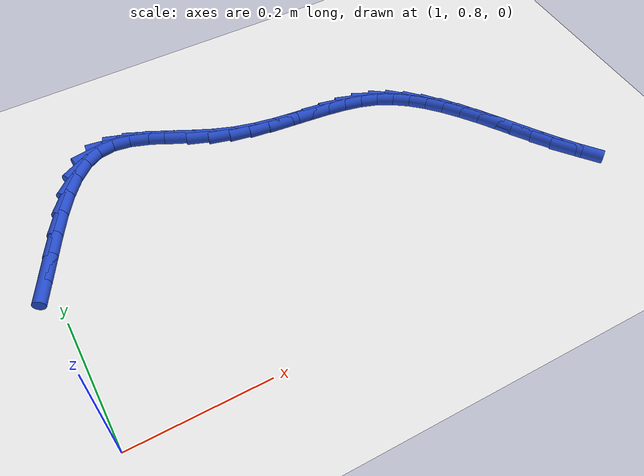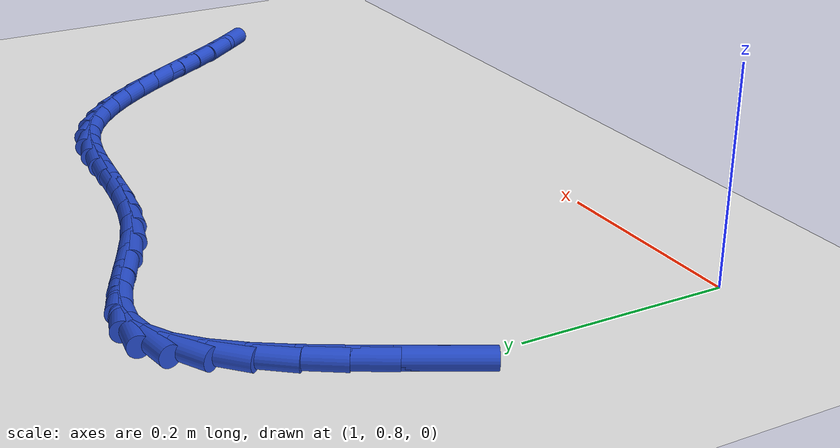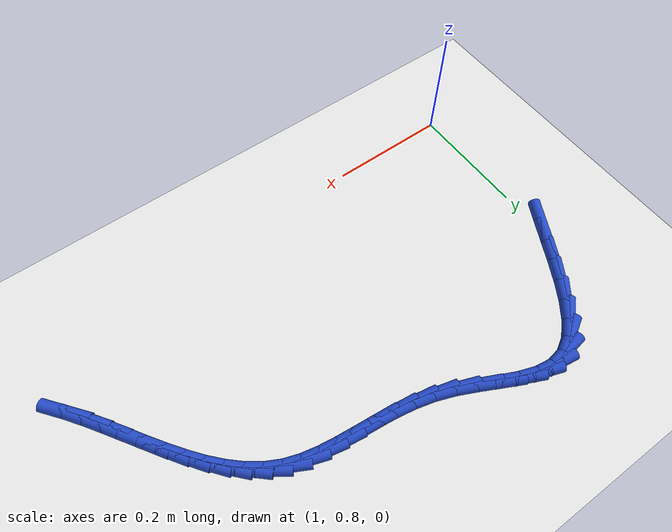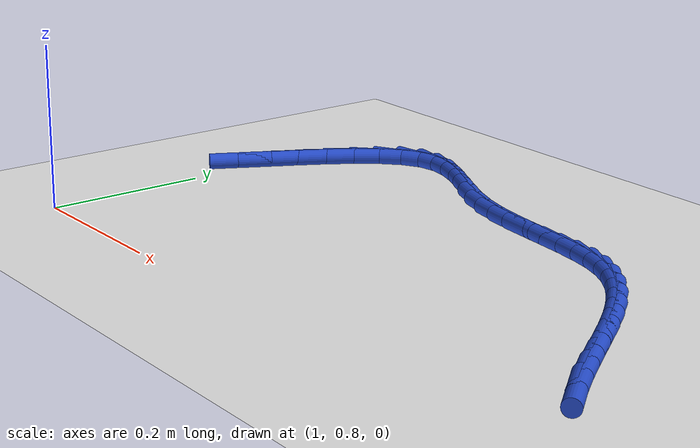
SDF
<sdf version="1.6">
 <world name="default">
  <model name="ground_plane">
   <static>1</static>
   <link name="link">
    <collision name="collision">
     <geometry><plane><normal>0 0 1</normal><size>100 100</size></plane></geometry>
     <surface><friction><ode><mu>100</mu><mu2>50</mu2></ode></friction></surface>
    </collision>
    <visual name="visual">
     <cast_shadows>0</cast_shadows>
     <geometry><plane><normal>0 0 1</normal><size>100 100</size></plane></geometry>
     <material>
      <script><uri>file://media/materials/scripts/gazebo.material</uri><name>Gazebo/WhiteGlow</name></script>
     </material>
    </visual>
   </link>
  </model>
  <model name="line">
   <link name="link_63">
    <pose>0.9939572712302231 1.073131018334222 0.01 0 1.57 1.0775166116276274</pose>
    <collision name="collision">
     <geometry><cylinder><radius>0.01</radius><length>0.08</length></cylinder></geometry>
    </collision>
    <visual name="visual">
     <material>
      <script><name>Gazebo/Blue</name><uri>file://media/materials/scripts/gazebo.material</uri></script>
     </material>
     <geometry><cylinder><radius>0.01</radius><length>0.08</length></cylinder></geometry>
    </visual>
   </link>
   <link name="link_64">
    <pose>1.0111594994914133 1.105128713908343 0.01 0 1.57 1.0798626204709945</pose>
    <collision name="collision">
     <geometry><cylinder><radius>0.01</radius><length>0.08</length></cylinder></geometry>
    </collision>
    <visual name="visual">
     <material>
      <script><name>Gazebo/Blue</name><uri>file://media/materials/scripts/gazebo.material</uri></script>
     </material>
     <geometry><cylinder><radius>0.01</radius><length>0.08</length></cylinder></geometry>
    </visual>
   </link>
   <link name="link_65">
    <pose>1.0290099567558029 1.138519763008025 0.01 0 1.57 1.0557053734130493</pose>
    <collision name="collision">
     <geometry><cylinder><radius>0.01</radius><length>0.08</length></cylinder></geometry>
    </collision>
    <visual name="visual">
     <material>
      <script><name>Gazebo/Blue</name><uri>file://media/materials/scripts/gazebo.material</uri></script>
     </material>
     <geometry><cylinder><radius>0.01</radius><length>0.08</length></cylinder></geometry>
    </visual>
   </link>
   <link name="link_66">
    <pose>1.0476644933058474 1.1714747166810144 0.01 0 1.57 1.002101872421107</pose>
    <collision name="collision">
     <geometry><cylinder><radius>0.01</radius><length>0.08</length></cylinder></geometry>
    </collision>
    <visual name="visual">
     <material>
      <script><name>Gazebo/Blue</name><uri>file://media/materials/scripts/gazebo.material</uri></script>
     </material>
     <geometry><cylinder><radius>0.01</radius><length>0.08</length></cylinder></geometry>
    </visual>
   </link>
   <link name="link_67">
    <pose>1.0672789594240037 1.2021641259750593 0.01 0 1.57 0.90868334507961</pose>
    <collision name="collision">
     <geometry><cylinder><radius>0.01</radius><length>0.08</length></cylinder></geometry>
    </collision>
    <visual name="visual">
     <material>
      <script><name>Gazebo/Blue</name><uri>file://media/materials/scripts/gazebo.material</uri></script>
     </material>
     <geometry><cylinder><radius>0.01</radius><length>0.08</length></cylinder></geometry>
    </visual>
   </link>
   <link name="link_68">
    <pose>1.0880092053927293 1.228758541937908 0.01 0 1.57 0.7541956222603117</pose>
    <collision name="collision">
     <geometry><cylinder><radius>0.01</radius><length>0.08</length></cylinder></geometry>
    </collision>
    <visual name="visual">
     <material>
      <script><name>Gazebo/Blue</name><uri>file://media/materials/scripts/gazebo.material</uri></script>
     </material>
     <geometry><cylinder><radius>0.01</radius><length>0.08</length></cylinder></geometry>
    </visual>
   </link>
   <link name="link_69">
    <pose>1.1100110814944801 1.249428515617307 0.01 0 1.57 0.5038236632814386</pose>
    <collision name="collision">
     <geometry><cylinder><radius>0.01</radius><length>0.08</length></cylinder></geometry>
    </collision>
    <visual name="visual">
     <material>
      <script><name>Gazebo/Blue</name><uri>file://media/materials/scripts/gazebo.material</uri></script>
     </material>
     <geometry><cylinder><radius>0.01</radius><length>0.08</length></cylinder></geometry>
    </visual>
   </link>
   <link name="link_70">
    <pose>1.1334404380117116 1.262344598061004 0.01 0 1.57 0.15256358471519296</pose>
    <collision name="collision">
     <geometry><cylinder><radius>0.01</radius><length>0.08</length></cylinder></geometry>
    </collision>
    <visual name="visual">
     <material>
      <script><name>Gazebo/Blue</name><uri>file://media/materials/scripts/gazebo.material</uri></script>
     </material>
     <geometry><cylinder><radius>0.01</radius><length>0.08</length></cylinder></geometry>
    </visual>
   </link>
   <link name="link_71">
    <pose>1.1584089076676634 1.2661837095535098 0.01 0 1.57 -0.1490313379004888</pose>
    <collision name="collision">
     <geometry><cylinder><radius>0.01</radius><length>0.08</length></cylinder></geometry>
    </collision>
    <visual name="visual">
     <material>
      <script><name>Gazebo/Blue</name><uri>file://media/materials/scripts/gazebo.material</uri></script>
     </material>
     <geometry><cylinder><radius>0.01</radius><length>0.08</length></cylinder></geometry>
    </visual>
   </link>
   <link name="link_72">
    <pose>1.1848012346890986 1.262221044839124 0.01 0 1.57 -0.3362950946153062</pose>
    <collision name="collision">
     <geometry><cylinder><radius>0.01</radius><length>0.08</length></cylinder></geometry>
    </collision>
    <visual name="visual">
     <material>
      <script><name>Gazebo/Blue</name><uri>file://media/materials/scripts/gazebo.material</uri></script>
     </material>
     <geometry><cylinder><radius>0.01</radius><length>0.08</length></cylinder></geometry>
    </visual>
   </link>
   <link name="link_73">
    <pose>1.2124295896437536 1.2525628953798391 0.01 0 1.57 -0.4327427645418528</pose>
    <collision name="collision">
     <geometry><cylinder><radius>0.01</radius><length>0.08</length></cylinder></geometry>
    </collision>
    <visual name="visual">
     <material>
      <script><name>Gazebo/Blue</name><uri>file://media/materials/scripts/gazebo.material</uri></script>
     </material>
     <geometry><cylinder><radius>0.01</radius><length>0.08</length></cylinder></geometry>
    </visual>
   </link>
   <link name="link_74">
    <pose>1.2411061107123165 1.239315923526631 0.01 0 1.57 -0.462583129608852</pose>
    <collision name="collision">
     <geometry><cylinder><radius>0.01</radius><length>0.08</length></cylinder></geometry>
    </collision>
    <visual name="visual">
     <material>
      <script><name>Gazebo/Blue</name><uri>file://media/materials/scripts/gazebo.material</uri></script>
     </material>
     <geometry><cylinder><radius>0.01</radius><length>0.08</length></cylinder></geometry>
    </visual>
   </link>
   <link name="link_75">
    <pose>1.2706429360754734 1.2245867916304742 0.01 0 1.57 -0.43681664045512414</pose>
    <collision name="collision">
     <geometry><cylinder><radius>0.01</radius><length>0.08</length></cylinder></geometry>
    </collision>
    <visual name="visual">
     <material>
      <script><name>Gazebo/Blue</name><uri>file://media/materials/scripts/gazebo.material</uri></script>
     </material>
     <geometry><cylinder><radius>0.01</radius><length>0.08</length></cylinder></geometry>
    </visual>
   </link>
   <link name="link_76">
    <pose>1.3008522039139119 1.2104821620423447 0.01 0 1.57 -0.35619898950767165</pose>
    <collision name="collision">
     <geometry><cylinder><radius>0.01</radius><length>0.08</length></cylinder></geometry>
    </collision>
    <visual name="visual">
     <material>
      <script><name>Gazebo/Blue</name><uri>file://media/materials/scripts/gazebo.material</uri></script>
     </material>
     <geometry><cylinder><radius>0.01</radius><length>0.08</length></cylinder></geometry>
    </visual>
   </link>
   <link name="link_77">
    <pose>1.3315447877750008 1.1990623878253266 0.01 0 1.57 -0.2536071368032528</pose>
    <collision name="collision">
     <geometry><cylinder><radius>0.01</radius><length>0.08</length></cylinder></geometry>
    </collision>
    <visual name="visual">
     <material>
      <script><name>Gazebo/Blue</name><uri>file://media/materials/scripts/gazebo.material</uri></script>
     </material>
     <geometry><cylinder><radius>0.01</radius><length>0.08</length></cylinder></geometry>
    </visual>
   </link>
   <link name="link_78">
    <pose>1.3624947688026623 1.1910405303182343 0.01 0 1.57 -0.17393738433878203</pose>
    <collision name="collision">
     <geometry><cylinder><radius>0.01</radius><length>0.08</length></cylinder></geometry>
    </collision>
    <visual name="visual">
     <material>
      <script><name>Gazebo/Blue</name><uri>file://media/materials/scripts/gazebo.material</uri></script>
     </material>
     <geometry><cylinder><radius>0.01</radius><length>0.08</length></cylinder></geometry>
    </visual>
   </link>
   <link name="link_79">
    <pose>1.3934345652022162 1.185604006239557 0.01 0 1.57 -0.1215746584129933</pose>
    <collision name="collision">
     <geometry><cylinder><radius>0.01</radius><length>0.08</length></cylinder></geometry>
    </collision>
    <visual name="visual">
     <material>
      <script><name>Gazebo/Blue</name><uri>file://media/materials/scripts/gazebo.material</uri></script>
     </material>
     <geometry><cylinder><radius>0.01</radius><length>0.08</length></cylinder></geometry>
    </visual>
   </link>
   <link name="link_80">
    <pose>1.424094351716647 1.1818580795274864 0.01 0 1.57 -0.09766471456197072</pose>
    <collision name="collision">
     <geometry><cylinder><radius>0.01</radius><length>0.08</length></cylinder></geometry>
    </collision>
    <visual name="visual">
     <material>
      <script><name>Gazebo/Blue</name><uri>file://media/materials/scripts/gazebo.material</uri></script>
     </material>
     <geometry><cylinder><radius>0.01</radius><length>0.08</length></cylinder></geometry>
    </visual>
   </link>
   <link name="link_81">
    <pose>1.45420430308894 1.1789080141202144 0.01 0 1.57 -0.10372033896821033</pose>
    <collision name="collision">
     <geometry><cylinder><radius>0.01</radius><length>0.08</length></cylinder></geometry>
    </collision>
    <visual name="visual">
     <material>
      <script><name>Gazebo/Blue</name><uri>file://media/materials/scripts/gazebo.material</uri></script>
     </material>
     <geometry><cylinder><radius>0.01</radius><length>0.08</length></cylinder></geometry>
    </visual>
   </link>
   <link name="link_82">
    <pose>1.48349459406208 1.1758590739559318 0.01 0 1.57 -0.14237882392704396</pose>
    <collision name="collision">
     <geometry><cylinder><radius>0.01</radius><length>0.08</length></cylinder></geometry>
    </collision>
    <visual name="visual">
     <material>
      <script><name>Gazebo/Blue</name><uri>file://media/materials/scripts/gazebo.material</uri></script>
     </material>
     <geometry><cylinder><radius>0.01</radius><length>0.08</length></cylinder></geometry>
    </visual>
   </link>
   <link name="link_83">
    <pose>1.5116953993790516 1.171816522972831 0.01 0 1.57 -0.21746584609798453</pose>
    <collision name="collision">
     <geometry><cylinder><radius>0.01</radius><length>0.08</length></cylinder></geometry>
    </collision>
    <visual name="visual">
     <material>
      <script><name>Gazebo/Blue</name><uri>file://media/materials/scripts/gazebo.material</uri></script>
     </material>
     <geometry><cylinder><radius>0.01</radius><length>0.08</length></cylinder></geometry>
    </visual>
   </link>
   <link name="link_84">
    <pose>1.5385368937828403 1.1658856251091032 0.01 0 1.57 -0.3327705297779046</pose>
    <collision name="collision">
     <geometry><cylinder><radius>0.01</radius><length>0.08</length></cylinder></geometry>
    </collision>
    <visual name="visual">
     <material>
      <script><name>Gazebo/Blue</name><uri>file://media/materials/scripts/gazebo.material</uri></script>
     </material>
     <geometry><cylinder><radius>0.01</radius><length>0.08</length></cylinder></geometry>
    </visual>
   </link>
   <link name="link_85">
    <pose>1.563749252016431 1.1571716443029403 0.01 0 1.57 -0.4800742681273775</pose>
    <collision name="collision">
     <geometry><cylinder><radius>0.01</radius><length>0.08</length></cylinder></geometry>
    </collision>
    <visual name="visual">
     <material>
      <script><name>Gazebo/Blue</name><uri>file://media/materials/scripts/gazebo.material</uri></script>
     </material>
     <geometry><cylinder><radius>0.01</radius><length>0.08</length></cylinder></geometry>
    </visual>
   </link>
   <link name="link_86">
    <pose>1.587146399842361 1.1449886267054088 0.01 0 1.57 -0.6177923474465064</pose>
    <collision name="collision">
     <geometry><cylinder><radius>0.01</radius><length>0.08</length></cylinder></geometry>
    </collision>
    <visual name="visual">
     <material>
      <script><name>Gazebo/Blue</name><uri>file://media/materials/scripts/gazebo.material</uri></script>
     </material>
     <geometry><cylinder><radius>0.01</radius><length>0.08</length></cylinder></geometry>
    </visual>
   </link>
   <link name="link_87">
    <pose>1.6088964115444664 1.1295334723403787 0.01 0 1.57 -0.7319729853006509</pose>
    <collision name="collision">
     <geometry><cylinder><radius>0.01</radius><length>0.08</length></cylinder></geometry>
    </collision>
    <visual name="visual">
     <material>
      <script><name>Gazebo/Blue</name><uri>file://media/materials/scripts/gazebo.material</uri></script>
     </material>
     <geometry><cylinder><radius>0.01</radius><length>0.08</length></cylinder></geometry>
    </visual>
   </link>
   <link name="link_88">
    <pose>1.6292609550238453 1.1112363999737151 0.01 0 1.57 -0.8221286787168595</pose>
    <collision name="collision">
     <geometry><cylinder><radius>0.01</radius><length>0.08</length></cylinder></geometry>
    </collision>
    <visual name="visual">
     <material>
      <script><name>Gazebo/Blue</name><uri>file://media/materials/scripts/gazebo.material</uri></script>
     </material>
     <geometry><cylinder><radius>0.01</radius><length>0.08</length></cylinder></geometry>
    </visual>
   </link>
   <link name="link_89">
    <pose>1.6485016987443655 1.0905276297742086 0.01 0 1.57 -0.8900004937260814</pose>
    <collision name="collision">
     <geometry><cylinder><radius>0.01</radius><length>0.08</length></cylinder></geometry>
    </collision>
    <visual name="visual">
     <material>
      <script><name>Gazebo/Blue</name><uri>file://media/materials/scripts/gazebo.material</uri></script>
     </material>
     <geometry><cylinder><radius>0.01</radius><length>0.08</length></cylinder></geometry>
    </visual>
   </link>
   <link name="link_90">
    <pose>1.6668803111698947 1.0678373819106484 0.01 0 1.57 -0.938019441958006</pose>
    <collision name="collision">
     <geometry><cylinder><radius>0.01</radius><length>0.08</length></cylinder></geometry>
    </collision>
    <visual name="visual">
     <material>
      <script><name>Gazebo/Blue</name><uri>file://media/materials/scripts/gazebo.material</uri></script>
     </material>
     <geometry><cylinder><radius>0.01</radius><length>0.08</length></cylinder></geometry>
    </visual>
   </link>
   <link name="link_91">
    <pose>1.6846584607642998 1.0435958765518243 0.01 0 1.57 -0.9684391818790308</pose>
    <collision name="collision">
     <geometry><cylinder><radius>0.01</radius><length>0.08</length></cylinder></geometry>
    </collision>
    <visual name="visual">
     <material>
      <script><name>Gazebo/Blue</name><uri>file://media/materials/scripts/gazebo.material</uri></script>
     </material>
     <geometry><cylinder><radius>0.01</radius><length>0.08</length></cylinder></geometry>
    </visual>
   </link>
   <link name="link_92">
    <pose>1.7020978159914495 1.0182333338665255 0.01 0 1.57 -0.9829711763759497</pose>
    <collision name="collision">
     <geometry><cylinder><radius>0.01</radius><length>0.08</length></cylinder></geometry>
    </collision>
    <visual name="visual">
     <material>
      <script><name>Gazebo/Blue</name><uri>file://media/materials/scripts/gazebo.material</uri></script>
     </material>
     <geometry><cylinder><radius>0.01</radius><length>0.08</length></cylinder></geometry>
    </visual>
   </link>
   <link name="link_93">
    <pose>1.7194600453152111 0.9921799740235417 0.01 0 1.57 -0.9826849676559423</pose>
    <collision name="collision">
     <geometry><cylinder><radius>0.01</radius><length>0.08</length></cylinder></geometry>
    </collision>
    <visual name="visual">
     <material>
      <script><name>Gazebo/Blue</name><uri>file://media/materials/scripts/gazebo.material</uri></script>
     </material>
     <geometry><cylinder><radius>0.01</radius><length>0.08</length></cylinder></geometry>
    </visual>
   </link>
   <link name="link_94">
    <pose>1.7370068171994524 0.965866017191663 0.01 0 1.57 -0.9680220597135583</pose>
    <collision name="collision">
     <geometry><cylinder><radius>0.01</radius><length>0.08</length></cylinder></geometry>
    </collision>
    <visual name="visual">
     <material>
      <script><name>Gazebo/Blue</name><uri>file://media/materials/scripts/gazebo.material</uri></script>
     </material>
     <geometry><cylinder><radius>0.01</radius><length>0.08</length></cylinder></geometry>
    </visual>
   </link>
   <link name="link_95">
    <pose>1.7549998001080407 0.9397216835396787 0.01 0 1.57 -0.9388565867463411</pose>
    <collision name="collision">
     <geometry><cylinder><radius>0.01</radius><length>0.08</length></cylinder></geometry>
    </collision>
    <visual name="visual">
     <material>
      <script><name>Gazebo/Blue</name><uri>file://media/materials/scripts/gazebo.material</uri></script>
     </material>
     <geometry><cylinder><radius>0.01</radius><length>0.08</length></cylinder></geometry>
    </visual>
   </link>
   <link name="link_96">
    <pose>1.7737006625048437 0.9141771932363781 0.01 0 1.57 -0.8945928311818488</pose>
    <collision name="collision">
     <geometry><cylinder><radius>0.01</radius><length>0.08</length></cylinder></geometry>
    </collision>
    <visual name="visual">
     <material>
      <script><name>Gazebo/Blue</name><uri>file://media/materials/scripts/gazebo.material</uri></script>
     </material>
     <geometry><cylinder><radius>0.01</radius><length>0.08</length></cylinder></geometry>
    </visual>
   </link>
  </model>
 </world>
</sdf>
